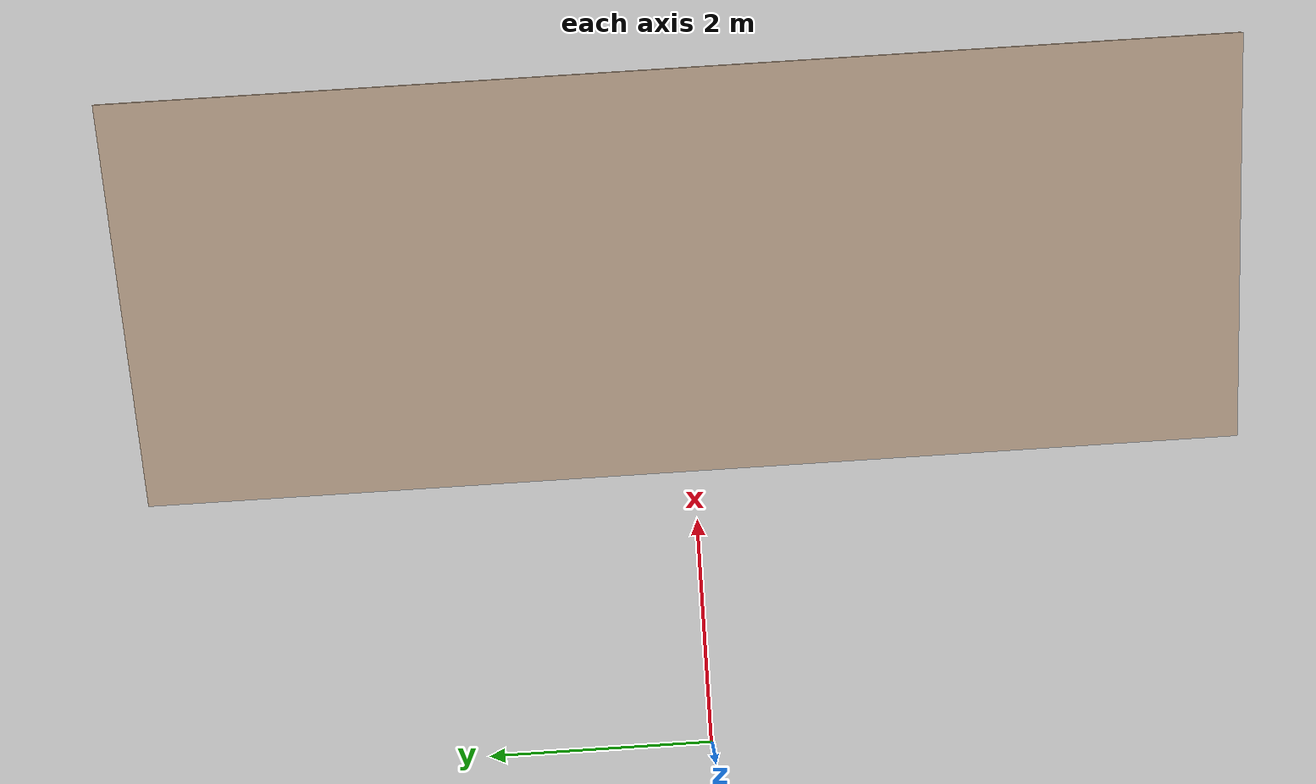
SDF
<?xml version="1.0"?>
<sdf version="1.8">
  <world name="cugo_world">

    <!-- ========== Physics 엔진 설정 ========== -->
    <physics name="1ms" type="ignored">
      <max_step_size>0.001</max_step_size>
      <real_time_factor>1.0</real_time_factor>
    </physics>

    <!-- ========== 플러그인 설정 ========== -->
    <plugin
      filename="ignition-gazebo-physics-system"
      name="ignition::gazebo::systems::Physics">
    </plugin>
    <plugin
      filename="ignition-gazebo-user-commands-system"
      name="ignition::gazebo::systems::UserCommands">
    </plugin>
    <plugin
      filename="ignition-gazebo-scene-broadcaster-system"
      name="ignition::gazebo::systems::SceneBroadcaster">
    </plugin>
    <plugin
      filename="ignition-gazebo-sensors-system"
      name="ignition::gazebo::systems::Sensors">
      <render_engine>ogre2</render_engine>
    </plugin>

    <!-- ========== 센서 플러그인 ========== -->
    <!-- IMU 센서 시스템 플러그인 -->
    <plugin
      filename="ignition-gazebo-imu-system"
      name="ignition::gazebo::systems::Imu">
    </plugin>

    <!-- ========== GUI 설정 ========== -->
    <gui fullscreen="0">
      <plugin filename="GzScene3D" name="3D View">
        <ignition-gui>
          <title>3D View</title>
          <property type="bool" key="showTitleBar">false</property>
          <property type="string" key="state">docked</property>
        </ignition-gui>
        <engine>ogre2</engine>
        <scene>scene</scene>
        <ambient_light>0.4 0.4 0.4</ambient_light>
        <background_color>0.8 0.8 0.8</background_color>
        <camera_pose>-6 0 6 0 0.5 0</camera_pose>
      </plugin>

      <plugin filename="WorldControl" name="World control">
        <ignition-gui>
          <title>World control</title>
          <property type="bool" key="showTitleBar">false</property>
          <property type="bool" key="resizable">false</property>
          <property type="double" key="height">72</property>
          <property type="double" key="width">121</property>
          <property type="double" key="z">1</property>
          <property type="string" key="state">floating</property>
          <anchors target="3D View">
            <line own="left" target="left"/>
            <line own="bottom" target="bottom"/>
          </anchors>
        </ignition-gui>
        <play_pause>true</play_pause>
        <step>true</step>
        <start_paused>false</start_paused>
      </plugin>

      <plugin filename="WorldStats" name="World stats">
        <ignition-gui>
          <title>World stats</title>
          <property type="bool" key="showTitleBar">false</property>
          <property type="bool" key="resizable">false</property>
          <property type="double" key="height">110</property>
          <property type="double" key="width">290</property>
          <property type="double" key="z">1</property>
          <property type="string" key="state">floating</property>
          <anchors target="3D View">
            <line own="right" target="right"/>
            <line own="bottom" target="bottom"/>
          </anchors>
        </ignition-gui>
        <sim_time>true</sim_time>
        <real_time>true</real_time>
        <real_time_factor>true</real_time_factor>
        <iterations>true</iterations>
      </plugin>
    </gui>

    <!-- ========== 광원 설정 ========== -->
    <light type="directional" name="sun">
      <cast_shadows>true</cast_shadows>
      <pose>0 0 10 0 0 0</pose>
      <diffuse>0.8 0.8 0.8 1</diffuse>
      <specular>0.2 0.2 0.2 1</specular>
      <attenuation>
        <range>1000</range>
        <constant>0.9</constant>
        <linear>0.01</linear>
        <quadratic>0.001</quadratic>
      </attenuation>
      <direction>-0.5 0.1 -0.9</direction>
    </light>

    <!-- ========== 바닥 평면 ========== -->
    <model name="ground_plane">
      <static>true</static>
      <link name="link">
        <collision name="collision">
          <geometry>
            <plane>
              <normal>0 0 1</normal>
            </plane>
          </geometry>
          <!-- 흙바닥 수준의 마찰계수 (건조한 흙: 0.5) -->
          <surface>
            <friction>
              <ode>
                <mu>0.5</mu>
                <mu2>0.5</mu2>
              </ode>
            </friction>
          </surface>
        </collision>
        <visual name="visual">
          <geometry>
            <plane>
              <normal>0 0 1</normal>
              <size>100 100</size>
            </plane>
          </geometry>
          <material>
            <ambient>0.8 0.8 0.8 1</ambient>
            <diffuse>0.8 0.8 0.8 1</diffuse>
            <specular>0.8 0.8 0.8 1</specular>
          </material>
        </visual>
      </link>
    </model>

    <!-- ========== 사다리꼴 램프 ========== -->
    <model name="trapezoidal_ramp">
      <static>true</static>
      <pose>4.0 0 0 0 0 3.14159</pose>

      <!-- 경사면 -->
      <link name="slope_surface">
        <pose>0 0 0.5 0 0.349066 0</pose> <!-- 20도 경사 = 0.349066 radians -->
        <collision name="collision">
          <geometry>
            <box>
              <size>4.0 10.0 0.1</size>
            </box>
          </geometry>
          <!-- 흙바닥 수준의 마찰계수 (건조한 흙: 0.5) -->
          <surface>
            <friction>
              <ode>
                <mu>0.5</mu>
                <mu2>0.5</mu2>
              </ode>
            </friction>
          </surface>
        </collision>
        <visual name="visual">
          <geometry>
            <box>
              <size>4.0 10.0 0.1</size>
            </box>
          </geometry>
          <material>
            <ambient>0.7 0.6 0.5 1</ambient>
            <diffuse>0.8 0.7 0.6 1</diffuse>
            <specular>0.2 0.2 0.2 1</specular>
          </material>
        </visual>
      </link>
    </model>

  </world>
</sdf>
